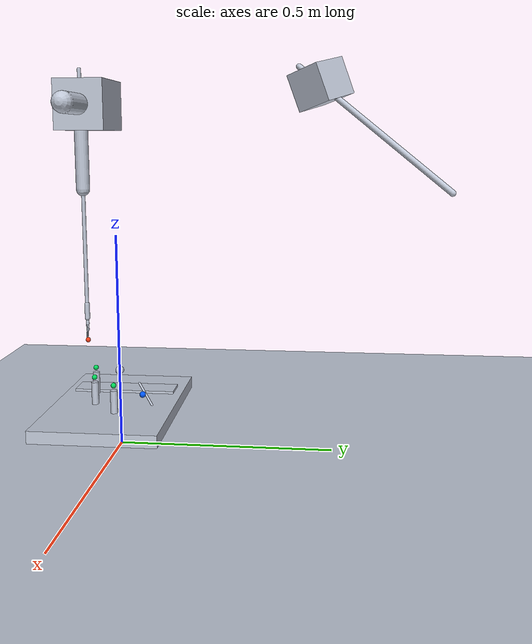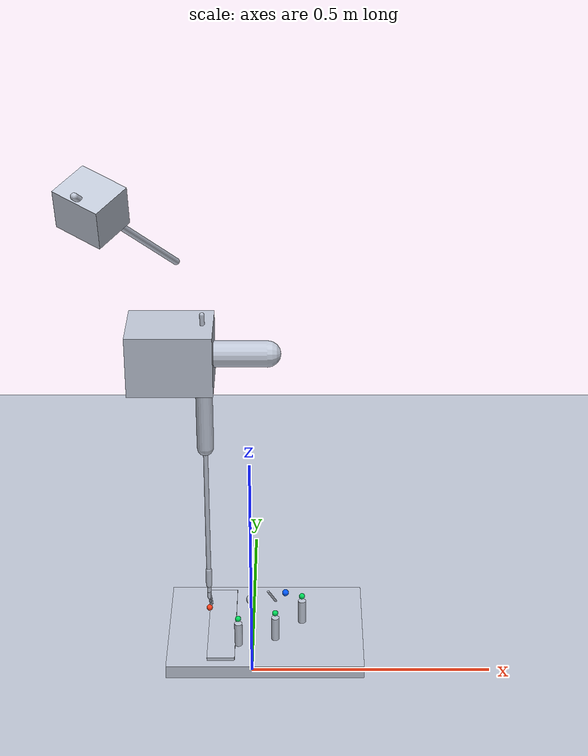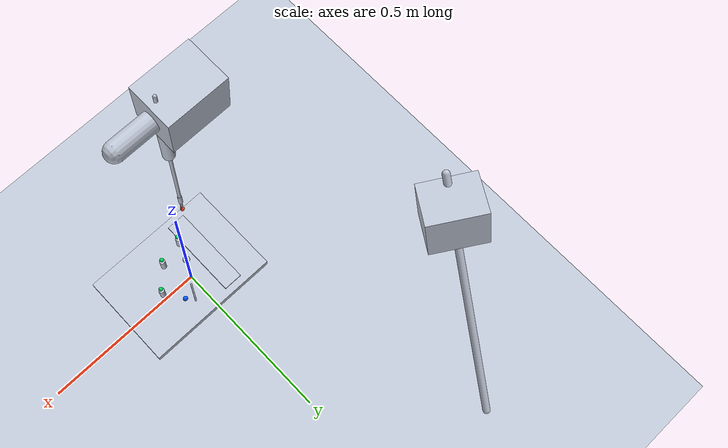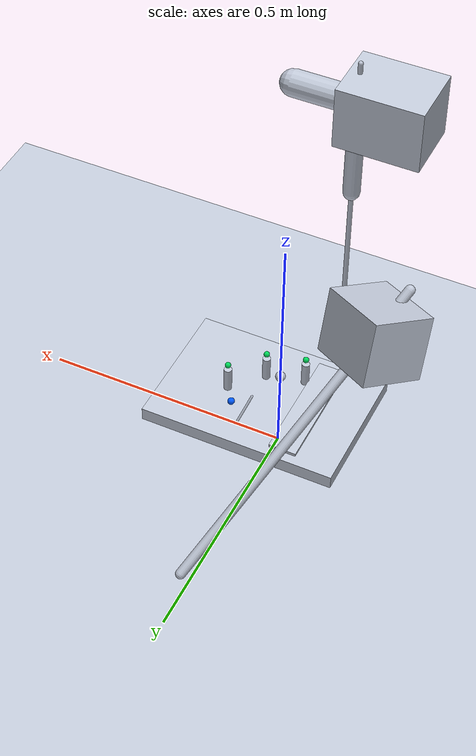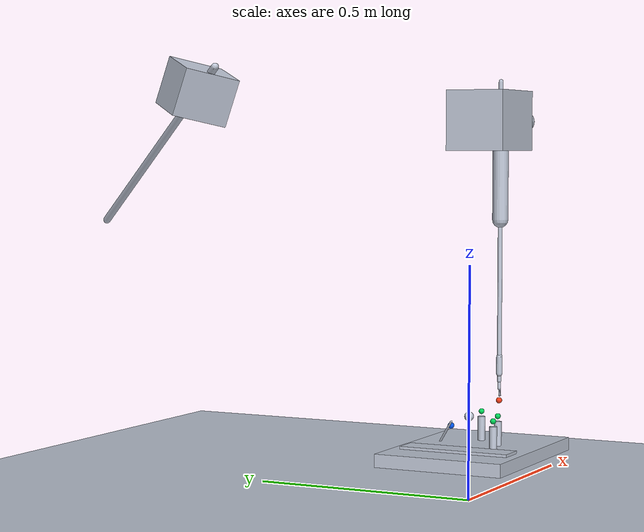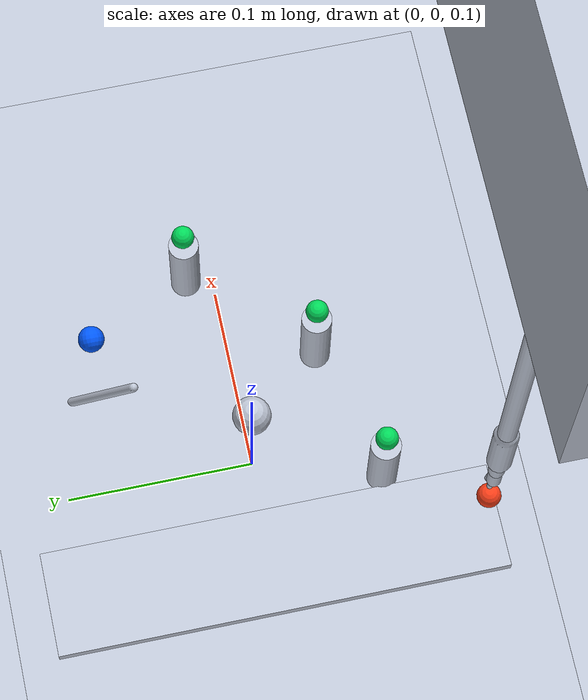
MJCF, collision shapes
<mujoco model="dvrk_psm_peg_needle_scene">
  <include file="psm.xml"/>

  <option timestep="0.002" integrator="implicitfast" gravity="0 0 0"/>
  <statistic center="0.05 0.0 0.35" extent="0.85"/>

  <visual>
    <headlight diffuse="0.55 0.55 0.55" ambient="0.32 0.32 0.32" specular="0.1 0.1 0.1"/>
    <global azimuth="145" elevation="-24"/>
    <rgba haze="0.12 0.14 0.16 1"/>
  </visual>

  <asset>
    <texture type="skybox" builtin="gradient" rgb1="0.76 0.80 0.86" rgb2="0.12 0.15 0.18" width="512" height="3072"/>
    <texture type="2d" name="grid" builtin="checker" mark="edge" rgb1="0.18 0.20 0.22" rgb2="0.24 0.27 0.30"
      markrgb="0.58 0.62 0.66" width="300" height="300"/>
    <material name="floor_mat" texture="grid" texuniform="true" texrepeat="4 4" reflectance="0.08"/>
    <material name="board_mat" rgba="0.18 0.22 0.24 1" specular="0.15" shininess="0.2"/>
    <material name="peg_mat" rgba="0.82 0.84 0.78 1" specular="0.25" shininess="0.4"/>
    <material name="target_mat" rgba="0.0 0.85 0.35 0.72"/>
    <material name="needle_mat" rgba="0.80 0.78 0.70 1" specular="0.5" shininess="0.7"/>
    <material name="danger_mat" rgba="0.8 0.05 0.03 0.18"/>
  </asset>

  <worldbody>
    <light pos="0.1 -0.4 1.4" dir="0 0 -1" directional="true"/>
    <geom name="floor" size="0 0 0.05" type="plane" material="floor_mat"/>

    <body name="surgical_board" pos="0.03 0.0 0.10">
      <geom name="board" type="box" size="0.20 0.14 0.014" material="board_mat"/>
      <geom name="forbidden_zone" type="box" pos="-0.09 0 0.017" size="0.028 0.12 0.003" material="danger_mat" contype="0" conaffinity="0"/>

      <body name="peg_1" pos="-0.055 -0.065 0.040">
        <geom type="cylinder" size="0.008 0.026" material="peg_mat"/>
        <site name="peg_target_1" pos="0 0 0.037" size="0.006" rgba="0 0.85 0.35 1"/>
      </body>
      <body name="peg_2" pos="0.020 -0.045 0.040">
        <geom type="cylinder" size="0.008 0.026" material="peg_mat"/>
        <site name="peg_target_2" pos="0 0 0.037" size="0.006" rgba="0 0.85 0.35 1"/>
      </body>
      <body name="peg_3" pos="0.075 0.015 0.040">
        <geom type="cylinder" size="0.008 0.026" material="peg_mat"/>
        <site name="peg_target_3" pos="0 0 0.037" size="0.006" rgba="0 0.85 0.35 1"/>
      </body>

      <body name="needle_body" pos="0.012 0.072 0.037" euler="0 1.25 0.58">
        <geom name="needle_proxy" type="capsule" fromto="-0.030 0 0 0.030 0 0" size="0.0024" material="needle_mat"/>
        <site name="needle_approach_target" pos="0.0 0.0 0.030" size="0.007" rgba="0 0.35 1 1"/>
      </body>
    </body>

    <body name="active_target_marker" mocap="true" pos="0.0 0.0 0.18">
      <geom name="active_target_sphere" type="sphere" size="0.010" material="target_mat" contype="0" conaffinity="0"/>
    </body>

    <camera name="overview_camera" mode="fixed" pos="0.52 -0.65 0.66" xyaxes="0.78 0.62 0 -0.30 0.38 0.87" fovy="45"/>
  </worldbody>
</mujoco>

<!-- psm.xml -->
<mujoco model="dvrk_psm_ecm_lightweight">
  <compiler angle="radian" autolimits="true"/>

  <default>
    <joint damping="1.5" armature="0.02"/>
    <geom rgba="0.75 0.78 0.84 1" friction="0.8 0.005 0.0001"/>
    <default class="visual">
      <geom contype="0" conaffinity="0" density="0" group="2"/>
    </default>
    <default class="collision">
      <geom group="3"/>
    </default>
  </default>

  <asset>
    <material name="dvrk_white" rgba="0.78 0.80 0.88 1"/>
    <material name="dvrk_dark" rgba="0.08 0.09 0.10 1"/>
    <material name="tool_steel" rgba="0.72 0.72 0.68 1" specular="0.5" shininess="0.6"/>
    <material name="rcm_safe" rgba="0.0 0.85 0.35 1"/>
    <material name="ecm_blue" rgba="0.15 0.35 0.75 1"/>

    <mesh name="si_psm_link_0" file="meshes/Si/PSM_ECM/link_0.STL"/>
    <mesh name="si_psm_link_1" file="meshes/Si/PSM_ECM/link_1.STL"/>
    <mesh name="si_psm_link_4" file="meshes/Si/PSM_ECM/link_4.STL"/>
    <mesh name="psm_tool_main" file="meshes/instruments/420006/tool_main_link.STL"/>
    <mesh name="psm_tool_wrist" file="meshes/instruments/420006/tool_wrist_link.STL"/>
    <mesh name="psm_jaw_left" file="meshes/instruments/420006/tool_wrist_sca_ee_link_1.STL"/>
    <mesh name="psm_jaw_right" file="meshes/instruments/420006/tool_wrist_sca_ee_link_2.STL"/>
    <mesh name="ecm_tool_main" file="meshes/instruments/SF0826001/tool_main_link.STL"/>
    <mesh name="ecm_tool_roll" file="meshes/instruments/SF0826001/tool_roll_link.STL"/>
  </asset>

  <worldbody>
    <body name="psm_base" pos="-0.08 -0.10 0.80">
      <geom class="visual" type="mesh" mesh="si_psm_link_0" material="dvrk_white" pos="-0.16 0 -0.04"/>
      <geom class="collision" type="box" size="0.08 0.06 0.06" pos="-0.06 0 0"/>

      <body name="psm_yaw_link" pos="0 0 0">
        <joint name="psm_yaw" type="hinge" axis="0 0 1" range="-1.2 1.2"/>
        <geom class="visual" type="mesh" mesh="si_psm_link_1" material="dvrk_white" pos="-0.03 -0.05 -0.08"/>
        <geom class="collision" type="capsule" fromto="0 0 0 0.12 0 0" size="0.025"/>

        <body name="psm_pitch_link" pos="0 0 0">
          <joint name="psm_pitch" type="hinge" axis="0 1 0" range="-0.95 0.95"/>
          <site name="psm_rcm_site" pos="0 0 0" size="0.008" rgba="0 0.85 0.35 1"/>
          <geom class="visual" type="mesh" mesh="si_psm_link_4" material="dvrk_white" pos="-0.03 0 -0.08"/>
          <geom class="collision" type="capsule" fromto="0 0 0 0 0 -0.20" size="0.016"/>

          <body name="psm_insertion_link" pos="0 0 0">
            <joint name="psm_insertion" type="slide" axis="0 0 -1" range="0.04 0.33"/>
            <site name="psm_shaft_base_site" pos="0 0 0.08" size="0.004" rgba="0 0.85 0.35 1"/>
            <geom class="visual" type="mesh" mesh="psm_tool_main" material="tool_steel" pos="-0.036 0 0.02"/>
            <geom class="collision" type="capsule" fromto="0 0 0.08 0 0 -0.48" size="0.0045"/>

            <body name="psm_roll_link" pos="0 0 -0.48">
              <joint name="psm_roll" type="hinge" axis="0 0 -1" range="-3.14 3.14"/>
              <geom class="visual" type="mesh" mesh="psm_tool_wrist" material="tool_steel"/>
              <geom class="collision" type="capsule" fromto="0 0 0 0 0 -0.035" size="0.006"/>

              <body name="psm_wrist_pitch_link" pos="0 0 -0.025">
                <joint name="psm_wrist_pitch" type="hinge" axis="0 1 0" range="-1.4 1.4"/>
                <geom class="collision" type="capsule" fromto="0 0 0 0 0 -0.025" size="0.004"/>

                <body name="psm_wrist_yaw_link" pos="0 0 -0.020">
                  <joint name="psm_wrist_yaw" type="hinge" axis="1 0 0" range="-1.4 1.4"/>
                  <geom class="collision" type="capsule" fromto="0 0 0 0 0 -0.020" size="0.0035"/>

                  <body name="psm_jaw_left_link" pos="0.002 0 -0.010">
                    <joint name="psm_jaw" type="hinge" axis="1 0 0" range="0 0.8"/>
                    <geom class="visual" type="mesh" mesh="psm_jaw_left" material="tool_steel"/>
                    <geom class="collision" type="capsule" fromto="0 0 0 0.004 0 -0.026" size="0.0015"/>
                  </body>

                  <body name="psm_jaw_right_link" pos="-0.002 0 -0.010" euler="0 0 3.14159">
                    <geom class="visual" type="mesh" mesh="psm_jaw_right" material="tool_steel"/>
                    <geom class="collision" type="capsule" fromto="0 0 0 -0.004 0 -0.026" size="0.0015"/>
                  </body>

                  <body name="psm_tool_tip" pos="0 0 -0.045">
                    <site name="psm_tool_tip_site" pos="0 0 0" size="0.006" rgba="1 0.25 0.1 1"/>
                    <geom class="visual" type="sphere" size="0.004" rgba="1 0.25 0.1 1"/>
                  </body>
                </body>
              </body>
            </body>
          </body>
        </body>
      </body>
    </body>

    <body name="ecm_base" pos="-0.34 0.46 0.86" euler="0.35 0.0 -0.62">
      <geom class="visual" type="mesh" mesh="si_psm_link_0" material="ecm_blue" pos="-0.12 0 -0.03"/>
      <geom class="collision" type="box" size="0.06 0.05 0.05"/>
      <body name="ecm_scope" pos="0 0 0" euler="0.62 0.0 0.0">
        <geom class="visual" type="mesh" mesh="ecm_tool_main" material="ecm_blue" pos="-0.035 0 0.03"/>
        <geom class="visual" type="mesh" mesh="ecm_tool_roll" material="tool_steel" pos="0 0 -0.45"/>
        <geom class="collision" type="capsule" fromto="0 0 0.08 0 0 -0.45" size="0.008"/>
        <camera name="ecm_camera" mode="fixed" pos="0 0 -0.46" euler="0 3.14159 0" fovy="48"/>
      </body>
    </body>
  </worldbody>

  <actuator>
    <position name="psm_yaw" joint="psm_yaw" kp="80" ctrlrange="-1.2 1.2"/>
    <position name="psm_pitch" joint="psm_pitch" kp="80" ctrlrange="-0.95 0.95"/>
    <position name="psm_insertion" joint="psm_insertion" kp="250" ctrlrange="0.04 0.33"/>
    <position name="psm_roll" joint="psm_roll" kp="35" ctrlrange="-3.14 3.14"/>
    <position name="psm_wrist_pitch" joint="psm_wrist_pitch" kp="25" ctrlrange="-1.4 1.4"/>
    <position name="psm_wrist_yaw" joint="psm_wrist_yaw" kp="25" ctrlrange="-1.4 1.4"/>
    <position name="psm_jaw" joint="psm_jaw" kp="12" ctrlrange="0 0.8"/>
  </actuator>
</mujoco>
